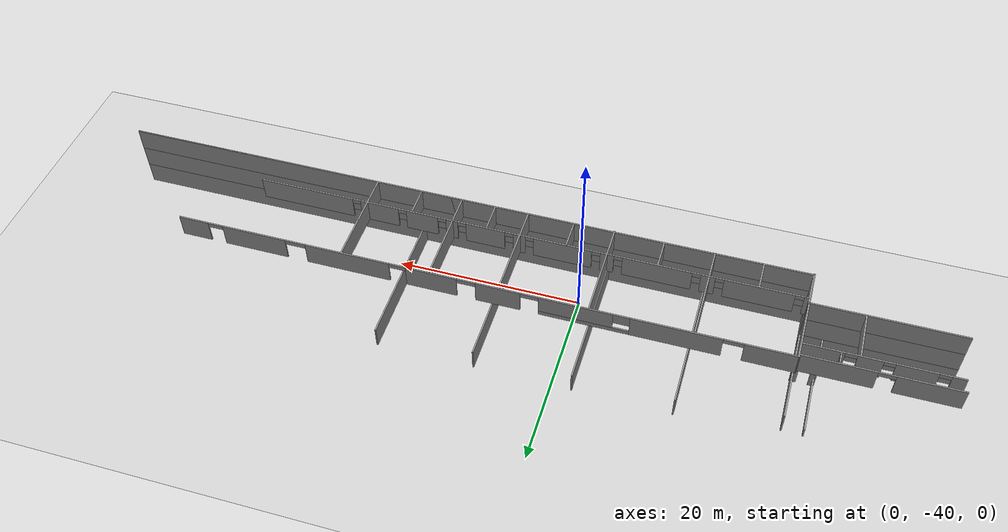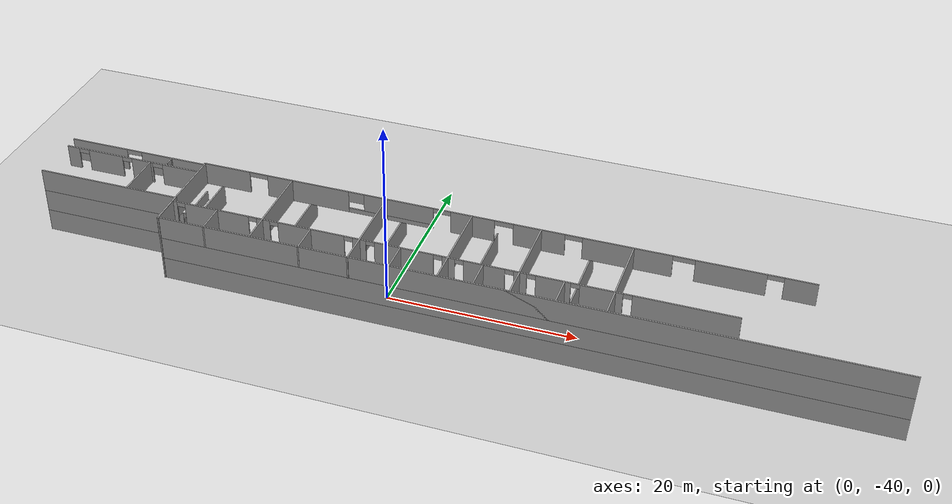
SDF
<sdf version="1.7">
 <world name="default">
  <model name="ground_plane">
   <static>1</static>
   <link name="link">
    <collision name="collision">
     <geometry><plane><normal>0 0 1</normal><size>100 100</size></plane></geometry>
     <surface><friction><ode><mu>100</mu><mu2>50</mu2></ode></friction></surface>
    </collision>
    <visual name="visual">
     <cast_shadows>0</cast_shadows>
     <geometry><plane><normal>0 0 1</normal><size>100 100</size></plane></geometry>
     <material>
      <script><uri>file://media/materials/scripts/gazebo.material</uri><name>Gazebo/Grey</name></script>
     </material>
    </visual>
   </link>
  </model>
  <model name="Anselm_Turmeda">
   <pose>-32.7988 -2.37459 0 0 -0 0</pose>
   <link name="Wall_1">
    <collision name="Wall_1_Collision">
     <geometry><box><size>75 0.15 2.5</size></box></geometry>
     <pose>0 0 1.25 0 -0 0</pose>
    </collision>
    <visual name="Wall_1_Visual">
     <pose>0 0 1.25 0 -0 0</pose>
     <geometry><box><size>75 0.15 2.5</size></box></geometry>
     <material>
      <script><uri>file://media/materials/scripts/gazebo.material</uri><name>Gazebo/Grey</name></script>
      <ambient>1 1 1 1</ambient>
     </material>
     <meta><layer>0</layer></meta>
    </visual>
    <pose>47.3769 -41.8543 0 0 -0 0</pose>
   </link>
   <link name="Wall_22">
    <collision name="Wall_22_Collision">
     <geometry><box><size>15.75 0.15 2.5</size></box></geometry>
     <pose>0 0 1.25 0 -0 0</pose>
    </collision>
    <visual name="Wall_22_Visual">
     <pose>0 0 1.25 0 -0 0</pose>
     <geometry><box><size>15.75 0.15 2.5</size></box></geometry>
     <material>
      <script><uri>file://media/materials/scripts/gazebo.material</uri><name>Gazebo/Grey</name></script>
      <ambient>1 1 1 1</ambient>
     </material>
     <meta><layer>0</layer></meta>
    </visual>
    <pose>2.02258 -38.0708 0 0 -0 0</pose>
   </link>
   <link name="Wall_226">
    <collision name="Wall_226_Collision">
     <geometry><box><size>75.2 0.15 2.5</size></box></geometry>
     <pose>0 0 1.25 0 -0 0</pose>
    </collision>
    <visual name="Wall_226_Visual">
     <pose>0 0 1.25 0 -0 0</pose>
     <geometry><box><size>75.2 0.15 2.5</size></box></geometry>
     <material>
      <script><uri>file://media/materials/scripts/gazebo.material</uri><name>Gazebo/Grey</name></script>
      <ambient>1 1 1 1</ambient>
     </material>
     <meta><layer>2</layer></meta>
    </visual>
    <pose>47.2769 -41.8543 5 0 -0 3.14159</pose>
   </link>
   <link name="Wall_228">
    <collision name="Wall_228_Collision">
     <geometry><box><size>10.7998 0.15 2.5</size></box></geometry>
     <pose>0 0 1.25 0 -0 0</pose>
    </collision>
    <visual name="Wall_228_Visual">
     <pose>0 0 1.25 0 -0 0</pose>
     <geometry><box><size>10.7998 0.15 2.5</size></box></geometry>
     <material>
      <script><uri>file://media/materials/scripts/gazebo.material</uri><name>Gazebo/Grey</name></script>
      <ambient>1 1 1 1</ambient>
     </material>
     <meta><layer>2</layer></meta>
    </visual>
    <pose>9.79231 -36.5296 5 0 -0 1.56321</pose>
   </link>
   <link name="Wall_229">
    <pose>42.0832 -31.2048 5 0 -0 0</pose>
    <visual name="Wall_229_Visual_0">
     <pose>-29.715 0 1.25 0 -0 0</pose>
     <geometry><box><size>5.31995 0.15 2.5</size></box></geometry>
     <material>
      <script><uri>file://media/materials/scripts/gazebo.material</uri><name>Gazebo/Grey</name></script>
      <ambient>1 1 1 1</ambient>
     </material>
     <meta><layer>2</layer></meta>
    </visual>
    <collision name="Wall_229_Collision_0">
     <geometry><box><size>5.31995 0.15 2.5</size></box></geometry>
     <pose>-29.715 0 1.25 0 -0 0</pose>
    </collision>
    <visual name="Wall_229_Visual_1">
     <pose>-20.441 0 1.25 0 -0 0</pose>
     <geometry><box><size>9.16156 0.15 2.5</size></box></geometry>
     <material>
      <script><uri>file://media/materials/scripts/gazebo.material</uri><name>Gazebo/Grey</name></script>
      <ambient>1 1 1 1</ambient>
     </material>
     <meta><layer>2</layer></meta>
    </visual>
    <collision name="Wall_229_Collision_1">
     <geometry><box><size>9.16156 0.15 2.5</size></box></geometry>
     <pose>-20.441 0 1.25 0 -0 0</pose>
    </collision>
    <visual name="Wall_229_Visual_2">
     <pose>-2.37066 0 1.25 0 -0 0</pose>
     <geometry><box><size>4.67221 0.15 2.5</size></box></geometry>
     <material>
      <script><uri>file://media/materials/scripts/gazebo.material</uri><name>Gazebo/Grey</name></script>
      <ambient>1 1 1 1</ambient>
     </material>
     <meta><layer>2</layer></meta>
    </visual>
    <collision name="Wall_229_Collision_2">
     <geometry><box><size>4.67221 0.15 2.5</size></box></geometry>
     <pose>-2.37066 0 1.25 0 -0 0</pose>
    </collision>
    <visual name="Wall_229_Visual_3">
     <pose>4.64135 0 1.25 0 -0 0</pose>
     <geometry><box><size>5.38276 0.15 2.5</size></box></geometry>
     <material>
      <script><uri>file://media/materials/scripts/gazebo.material</uri><name>Gazebo/Grey</name></script>
      <ambient>1 1 1 1</ambient>
     </material>
     <meta><layer>2</layer></meta>
    </visual>
    <collision name="Wall_229_Collision_3">
     <geometry><box><size>5.38276 0.15 2.5</size></box></geometry>
     <pose>4.64135 0 1.25 0 -0 0</pose>
    </collision>
    <visual name="Wall_229_Visual_4">
     <pose>13.6915 0 1.25 0 -0 0</pose>
     <geometry><box><size>9.1225 0.15 2.5</size></box></geometry>
     <material>
      <script><uri>file://media/materials/scripts/gazebo.material</uri><name>Gazebo/Grey</name></script>
      <ambient>1 1 1 1</ambient>
     </material>
     <meta><layer>2</layer></meta>
    </visual>
    <collision name="Wall_229_Collision_4">
     <geometry><box><size>9.1225 0.15 2.5</size></box></geometry>
     <pose>13.6915 0 1.25 0 -0 0</pose>
    </collision>
    <visual name="Wall_229_Visual_5">
     <pose>23.9664 0 1.25 0 -0 0</pose>
     <geometry><box><size>7.00954 0.15 2.5</size></box></geometry>
     <material>
      <script><uri>file://media/materials/scripts/gazebo.material</uri><name>Gazebo/Grey</name></script>
      <ambient>1 1 1 1</ambient>
     </material>
     <meta><layer>2</layer></meta>
    </visual>
    <collision name="Wall_229_Collision_5">
     <geometry><box><size>7.00954 0.15 2.5</size></box></geometry>
     <pose>23.9664 0 1.25 0 -0 0</pose>
    </collision>
    <visual name="Wall_229_Visual_6">
     <pose>30.7471 0 1.25 0 -0 0</pose>
     <geometry><box><size>3.25584 0.15 2.5</size></box></geometry>
     <material>
      <script><uri>file://media/materials/scripts/gazebo.material</uri><name>Gazebo/Grey</name></script>
      <ambient>1 1 1 1</ambient>
     </material>
     <meta><layer>2</layer></meta>
    </visual>
    <collision name="Wall_229_Collision_6">
     <geometry><box><size>3.25584 0.15 2.5</size></box></geometry>
     <pose>30.7471 0 1.25 0 -0 0</pose>
    </collision>
    <visual name="Wall_229_Visual_7">
     <pose>-11.2197 0 0.25 0 -0 0</pose>
     <geometry><box><size>9.28115 0.15 0.5</size></box></geometry>
     <material>
      <script><uri>file://media/materials/scripts/gazebo.material</uri><name>Gazebo/Grey</name></script>
      <ambient>1 1 1 1</ambient>
     </material>
     <meta><layer>2</layer></meta>
    </visual>
    <collision name="Wall_229_Collision_7">
     <geometry><box><size>9.28115 0.15 0.5</size></box></geometry>
     <pose>-11.2197 0 0.25 0 -0 0</pose>
    </collision>
    <visual name="Wall_229_Visual_8">
     <pose>-10.3706 0 1.5 0 -0 0</pose>
     <geometry><box><size>7.58311 0.15 2</size></box></geometry>
     <material>
      <script><uri>file://media/materials/scripts/gazebo.material</uri><name>Gazebo/Grey</name></script>
      <ambient>1 1 1 1</ambient>
     </material>
     <meta><layer>2</layer></meta>
    </visual>
    <collision name="Wall_229_Collision_8">
     <geometry><box><size>7.58311 0.15 2</size></box></geometry>
     <pose>-10.3706 0 1.5 0 -0 0</pose>
    </collision>
    <visual name="Wall_229_Visual_9">
     <pose>-15.0112 0 1.9 0 -0 0</pose>
     <geometry><box><size>1.69805 0.15 1.2</size></box></geometry>
     <material>
      <script><uri>file://media/materials/scripts/gazebo.material</uri><name>Gazebo/Grey</name></script>
      <ambient>1 1 1 1</ambient>
     </material>
     <meta><layer>2</layer></meta>
    </visual>
    <collision name="Wall_229_Collision_9">
     <geometry><box><size>1.69805 0.15 1.2</size></box></geometry>
     <pose>-15.0112 0 1.9 0 -0 0</pose>
    </collision>
    <visual name="Wall_229_Visual_10">
     <pose>-26.0384 0 2.25 0 -0 0</pose>
     <geometry><box><size>2.03325 0.15 0.5</size></box></geometry>
     <material>
      <script><uri>file://media/materials/scripts/gazebo.material</uri><name>Gazebo/Grey</name></script>
      <ambient>1 1 1 1</ambient>
     </material>
     <meta><layer>2</layer></meta>
    </visual>
    <collision name="Wall_229_Collision_10">
     <geometry><box><size>2.03325 0.15 0.5</size></box></geometry>
     <pose>-26.0384 0 2.25 0 -0 0</pose>
    </collision>
    <visual name="Wall_229_Visual_11">
     <pose>0.957709 0 2.25 0 -0 0</pose>
     <geometry><box><size>1.98452 0.15 0.5</size></box></geometry>
     <material>
      <script><uri>file://media/materials/scripts/gazebo.material</uri><name>Gazebo/Grey</name></script>
      <ambient>1 1 1 1</ambient>
     </material>
     <meta><layer>2</layer></meta>
    </visual>
    <collision name="Wall_229_Collision_11">
     <geometry><box><size>1.98452 0.15 0.5</size></box></geometry>
     <pose>0.957709 0 2.25 0 -0 0</pose>
    </collision>
    <visual name="Wall_229_Visual_12">
     <pose>8.2315 0 2.25 0 -0 0</pose>
     <geometry><box><size>1.79754 0.15 0.5</size></box></geometry>
     <material>
      <script><uri>file://media/materials/scripts/gazebo.material</uri><name>Gazebo/Grey</name></script>
      <ambient>1 1 1 1</ambient>
     </material>
     <meta><layer>2</layer></meta>
    </visual>
    <collision name="Wall_229_Collision_12">
     <geometry><box><size>1.79754 0.15 0.5</size></box></geometry>
     <pose>8.2315 0 2.25 0 -0 0</pose>
    </collision>
    <visual name="Wall_229_Visual_13">
     <pose>19.3572 0 2.25 0 -0 0</pose>
     <geometry><box><size>2.20891 0.15 0.5</size></box></geometry>
     <material>
      <script><uri>file://media/materials/scripts/gazebo.material</uri><name>Gazebo/Grey</name></script>
      <ambient>1 1 1 1</ambient>
     </material>
     <meta><layer>2</layer></meta>
    </visual>
    <collision name="Wall_229_Collision_13">
     <geometry><box><size>2.20891 0.15 0.5</size></box></geometry>
     <pose>19.3572 0 2.25 0 -0 0</pose>
    </collision>
    <visual name="Wall_229_Visual_14">
     <pose>28.2952 0 2.25 0 -0 0</pose>
     <geometry><box><size>1.64795 0.15 0.5</size></box></geometry>
     <material>
      <script><uri>file://media/materials/scripts/gazebo.material</uri><name>Gazebo/Grey</name></script>
      <ambient>1 1 1 1</ambient>
     </material>
     <meta><layer>2</layer></meta>
    </visual>
    <collision name="Wall_229_Collision_14">
     <geometry><box><size>1.64795 0.15 0.5</size></box></geometry>
     <pose>28.2952 0 2.25 0 -0 0</pose>
    </collision>
    <visual name="Wall_229_Visual_15">
     <pose>-5.64293 0 2.25 0 -0 0</pose>
     <geometry><box><size>1.87233 0.15 0.5</size></box></geometry>
     <material>
      <script><uri>file://media/materials/scripts/gazebo.material</uri><name>Gazebo/Grey</name></script>
      <ambient>1 1 1 1</ambient>
     </material>
     <meta><layer>2</layer></meta>
    </visual>
    <collision name="Wall_229_Collision_15">
     <geometry><box><size>1.87233 0.15 0.5</size></box></geometry>
     <pose>-5.64293 0 2.25 0 -0 0</pose>
    </collision>
   </link>
   <link name="Wall_24">
    <collision name="Wall_24_Collision">
     <geometry><box><size>4 0.15 2.5</size></box></geometry>
     <pose>0 0 1.25 0 -0 0</pose>
    </collision>
    <visual name="Wall_24_Visual">
     <pose>0 0 1.25 0 -0 0</pose>
     <geometry><box><size>4 0.15 2.5</size></box></geometry>
     <material>
      <script><uri>file://media/materials/scripts/gazebo.material</uri><name>Gazebo/Grey</name></script>
      <ambient>1 1 1 1</ambient>
     </material>
     <meta><layer>0</layer></meta>
    </visual>
    <pose>9.82258 -39.9958 0 0 -0 -1.5708</pose>
   </link>
   <link name="Wall_242">
    <collision name="Wall_242_Collision">
     <geometry><box><size>10.75 0.15 2.5</size></box></geometry>
     <pose>0 0 1.25 0 -0 0</pose>
    </collision>
    <visual name="Wall_242_Visual">
     <pose>0 0 1.25 0 -0 0</pose>
     <geometry><box><size>10.75 0.15 2.5</size></box></geometry>
     <material>
      <script><uri>file://media/materials/scripts/gazebo.material</uri><name>Gazebo/Grey</name></script>
      <ambient>1 1 1 1</ambient>
     </material>
     <meta><layer>2</layer></meta>
    </visual>
    <pose>56.4073 -36.5475 5 0 -0 1.5708</pose>
   </link>
   <link name="Wall_244">
    <collision name="Wall_244_Collision">
     <geometry><box><size>10.75 0.15 2.5</size></box></geometry>
     <pose>0 0 1.25 0 -0 0</pose>
    </collision>
    <visual name="Wall_244_Visual">
     <pose>0 0 1.25 0 -0 0</pose>
     <geometry><box><size>10.75 0.15 2.5</size></box></geometry>
     <material>
      <script><uri>file://media/materials/scripts/gazebo.material</uri><name>Gazebo/Grey</name></script>
      <ambient>1 1 1 1</ambient>
     </material>
     <meta><layer>2</layer></meta>
    </visual>
    <pose>46.9387 -36.5284 5 0 -0 1.5708</pose>
   </link>
   <link name="Wall_247">
    <collision name="Wall_247_Collision">
     <geometry><box><size>10.7 0.15 2.5</size></box></geometry>
     <pose>0 0 1.25 0 -0 0</pose>
    </collision>
    <visual name="Wall_247_Visual">
     <pose>0 0 1.25 0 -0 0</pose>
     <geometry><box><size>10.7 0.15 2.5</size></box></geometry>
     <material>
      <script><uri>file://media/materials/scripts/gazebo.material</uri><name>Gazebo/Grey</name></script>
      <ambient>1 1 1 1</ambient>
     </material>
     <meta><layer>2</layer></meta>
    </visual>
    <pose>19.8568 -36.5547 5 0 -0 1.5708</pose>
   </link>
   <link name="Wall_249">
    <collision name="Wall_249_Collision">
     <geometry><box><size>10.75 0.15 2.5</size></box></geometry>
     <pose>0 0 1.25 0 -0 0</pose>
    </collision>
    <visual name="Wall_249_Visual">
     <pose>0 0 1.25 0 -0 0</pose>
     <geometry><box><size>10.75 0.15 2.5</size></box></geometry>
     <material>
      <script><uri>file://media/materials/scripts/gazebo.material</uri><name>Gazebo/Grey</name></script>
      <ambient>1 1 1 1</ambient>
     </material>
     <meta><layer>2</layer></meta>
    </visual>
    <pose>30.3923 -36.6359 5 0 -0 1.5708</pose>
   </link>
   <link name="Wall_251">
    <collision name="Wall_251_Collision">
     <geometry><box><size>10.7 0.15 2.5</size></box></geometry>
     <pose>0 0 1.25 0 -0 0</pose>
    </collision>
    <visual name="Wall_251_Visual">
     <pose>0 0 1.25 0 -0 0</pose>
     <geometry><box><size>10.7 0.15 2.5</size></box></geometry>
     <material>
      <script><uri>file://media/materials/scripts/gazebo.material</uri><name>Gazebo/Grey</name></script>
      <ambient>1 1 1 1</ambient>
     </material>
     <meta><layer>2</layer></meta>
    </visual>
    <pose>39.6437 -36.5614 5 0 -0 1.5708</pose>
   </link>
   <link name="Wall_253">
    <pose>39.0687 -38.6976 5 0 -0 0</pose>
    <visual name="Wall_253_Visual_0">
     <pose>-29.0603 0 1.25 0 -0 0</pose>
     <geometry><box><size>0.62942 0.15 2.5</size></box></geometry>
     <material>
      <script><uri>file://media/materials/scripts/gazebo.material</uri><name>Gazebo/Grey</name></script>
      <ambient>1 1 1 1</ambient>
     </material>
     <meta><layer>2</layer></meta>
    </visual>
    <collision name="Wall_253_Collision_0">
     <geometry><box><size>0.62942 0.15 2.5</size></box></geometry>
     <pose>-29.0603 0 1.25 0 -0 0</pose>
    </collision>
    <visual name="Wall_253_Visual_1">
     <pose>-24.2941 0 1.25 0 -0 0</pose>
     <geometry><box><size>7.10304 0.15 2.5</size></box></geometry>
     <material>
      <script><uri>file://media/materials/scripts/gazebo.material</uri><name>Gazebo/Grey</name></script>
      <ambient>1 1 1 1</ambient>
     </material>
     <meta><layer>2</layer></meta>
    </visual>
    <collision name="Wall_253_Collision_1">
     <geometry><box><size>7.10304 0.15 2.5</size></box></geometry>
     <pose>-24.2941 0 1.25 0 -0 0</pose>
    </collision>
    <visual name="Wall_253_Visual_2">
     <pose>-19.1145 0 1.25 0 -0 0</pose>
     <geometry><box><size>1.45603 0.15 2.5</size></box></geometry>
     <material>
      <script><uri>file://media/materials/scripts/gazebo.material</uri><name>Gazebo/Grey</name></script>
      <ambient>1 1 1 1</ambient>
     </material>
     <meta><layer>2</layer></meta>
    </visual>
    <collision name="Wall_253_Collision_2">
     <geometry><box><size>1.45603 0.15 2.5</size></box></geometry>
     <pose>-19.1145 0 1.25 0 -0 0</pose>
    </collision>
    <visual name="Wall_253_Visual_3">
     <pose>-13.8976 0 1.25 0 -0 0</pose>
     <geometry><box><size>7.17783 0.15 2.5</size></box></geometry>
     <material>
      <script><uri>file://media/materials/scripts/gazebo.material</uri><name>Gazebo/Grey</name></script>
      <ambient>1 1 1 1</ambient>
     </material>
     <meta><layer>2</layer></meta>
    </visual>
    <collision name="Wall_253_Collision_3">
     <geometry><box><size>7.17783 0.15 2.5</size></box></geometry>
     <pose>-13.8976 0 1.25 0 -0 0</pose>
    </collision>
    <visual name="Wall_253_Visual_4">
     <pose>-8.69936 0 1.25 0 -0 0</pose>
     <geometry><box><size>1.41864 0.15 2.5</size></box></geometry>
     <material>
      <script><uri>file://media/materials/scripts/gazebo.material</uri><name>Gazebo/Grey</name></script>
      <ambient>1 1 1 1</ambient>
     </material>
     <meta><layer>2</layer></meta>
    </visual>
    <collision name="Wall_253_Collision_4">
     <geometry><box><size>1.41864 0.15 2.5</size></box></geometry>
     <pose>-8.69936 0 1.25 0 -0 0</pose>
    </collision>
    <visual name="Wall_253_Visual_5">
     <pose>-4.00599 0 1.25 0 -0 0</pose>
     <geometry><box><size>6.1681 0.15 2.5</size></box></geometry>
     <material>
      <script><uri>file://media/materials/scripts/gazebo.material</uri><name>Gazebo/Grey</name></script>
      <ambient>1 1 1 1</ambient>
     </material>
     <meta><layer>2</layer></meta>
    </visual>
    <collision name="Wall_253_Collision_5">
     <geometry><box><size>6.1681 0.15 2.5</size></box></geometry>
     <pose>-4.00599 0 1.25 0 -0 0</pose>
    </collision>
    <visual name="Wall_253_Visual_6">
     <pose>0.631282 0 1.25 0 -0 0</pose>
     <geometry><box><size>1.30645 0.15 2.5</size></box></geometry>
     <material>
      <script><uri>file://media/materials/scripts/gazebo.material</uri><name>Gazebo/Grey</name></script>
      <ambient>1 1 1 1</ambient>
     </material>
     <meta><layer>2</layer></meta>
    </visual>
    <collision name="Wall_253_Collision_6">
     <geometry><box><size>1.30645 0.15 2.5</size></box></geometry>
     <pose>0.631282 0 1.25 0 -0 0</pose>
    </collision>
    <visual name="Wall_253_Visual_7">
     <pose>4.29622 0 1.25 0 -0 0</pose>
     <geometry><box><size>4.22344 0.15 2.5</size></box></geometry>
     <material>
      <script><uri>file://media/materials/scripts/gazebo.material</uri><name>Gazebo/Grey</name></script>
      <ambient>1 1 1 1</ambient>
     </material>
     <meta><layer>2</layer></meta>
    </visual>
    <collision name="Wall_253_Collision_7">
     <geometry><box><size>4.22344 0.15 2.5</size></box></geometry>
     <pose>4.29622 0 1.25 0 -0 0</pose>
    </collision>
    <visual name="Wall_253_Visual_8">
     <pose>7.96117 0 1.25 0 -0 0</pose>
     <geometry><box><size>1.30645 0.15 2.5</size></box></geometry>
     <material>
      <script><uri>file://media/materials/scripts/gazebo.material</uri><name>Gazebo/Grey</name></script>
      <ambient>1 1 1 1</ambient>
     </material>
     <meta><layer>2</layer></meta>
    </visual>
    <collision name="Wall_253_Collision_8">
     <geometry><box><size>1.30645 0.15 2.5</size></box></geometry>
     <pose>7.96117 0 1.25 0 -0 0</pose>
    </collision>
    <visual name="Wall_253_Visual_9">
     <pose>11.2521 0 1.25 0 -0 0</pose>
     <geometry><box><size>3.47549 0.15 2.5</size></box></geometry>
     <material>
      <script><uri>file://media/materials/scripts/gazebo.material</uri><name>Gazebo/Grey</name></script>
      <ambient>1 1 1 1</ambient>
     </material>
     <meta><layer>2</layer></meta>
    </visual>
    <collision name="Wall_253_Collision_9">
     <geometry><box><size>3.47549 0.15 2.5</size></box></geometry>
     <pose>11.2521 0 1.25 0 -0 0</pose>
    </collision>
    <visual name="Wall_253_Visual_10">
     <pose>16.0016 0 1.25 0 -0 0</pose>
     <geometry><box><size>4.22344 0.15 2.5</size></box></geometry>
     <material>
      <script><uri>file://media/materials/scripts/gazebo.material</uri><name>Gazebo/Grey</name></script>
      <ambient>1 1 1 1</ambient>
     </material>
     <meta><layer>2</layer></meta>
    </visual>
    <collision name="Wall_253_Collision_10">
     <geometry><box><size>4.22344 0.15 2.5</size></box></geometry>
     <pose>16.0016 0 1.25 0 -0 0</pose>
    </collision>
    <visual name="Wall_253_Visual_11">
     <pose>24.1942 0 1.25 0 -0 0</pose>
     <geometry><box><size>10.3617 0.15 2.5</size></box></geometry>
     <material>
      <script><uri>file://media/materials/scripts/gazebo.material</uri><name>Gazebo/Grey</name></script>
      <ambient>1 1 1 1</ambient>
     </material>
     <meta><layer>2</layer></meta>
    </visual>
    <collision name="Wall_253_Collision_11">
     <geometry><box><size>10.3617 0.15 2.5</size></box></geometry>
     <pose>24.1942 0 1.25 0 -0 0</pose>
    </collision>
    <visual name="Wall_253_Visual_12">
     <pose>-28.2956 0 2.25 0 -0 0</pose>
     <geometry><box><size>0.9 0.15 0.5</size></box></geometry>
     <material>
      <script><uri>file://media/materials/scripts/gazebo.material</uri><name>Gazebo/Grey</name></script>
      <ambient>1 1 1 1</ambient>
     </material>
     <meta><layer>2</layer></meta>
    </visual>
    <collision name="Wall_253_Collision_12">
     <geometry><box><size>0.9 0.15 0.5</size></box></geometry>
     <pose>-28.2956 0 2.25 0 -0 0</pose>
    </collision>
    <visual name="Wall_253_Visual_13">
     <pose>-20.2925 0 2.25 0 -0 0</pose>
     <geometry><box><size>0.9 0.15 0.5</size></box></geometry>
     <material>
      <script><uri>file://media/materials/scripts/gazebo.material</uri><name>Gazebo/Grey</name></script>
      <ambient>1 1 1 1</ambient>
     </material>
     <meta><layer>2</layer></meta>
    </visual>
    <collision name="Wall_253_Collision_13">
     <geometry><box><size>0.9 0.15 0.5</size></box></geometry>
     <pose>-20.2925 0 2.25 0 -0 0</pose>
    </collision>
    <visual name="Wall_253_Visual_14">
     <pose>-17.9365 0 2.25 0 -0 0</pose>
     <geometry><box><size>0.9 0.15 0.5</size></box></geometry>
     <material>
      <script><uri>file://media/materials/scripts/gazebo.material</uri><name>Gazebo/Grey</name></script>
      <ambient>1 1 1 1</ambient>
     </material>
     <meta><layer>2</layer></meta>
    </visual>
    <collision name="Wall_253_Collision_14">
     <geometry><box><size>0.9 0.15 0.5</size></box></geometry>
     <pose>-17.9365 0 2.25 0 -0 0</pose>
    </collision>
    <visual name="Wall_253_Visual_15">
     <pose>-9.85868 0 2.25 0 -0 0</pose>
     <geometry><box><size>0.9 0.15 0.5</size></box></geometry>
     <material>
      <script><uri>file://media/materials/scripts/gazebo.material</uri><name>Gazebo/Grey</name></script>
      <ambient>1 1 1 1</ambient>
     </material>
     <meta><layer>2</layer></meta>
    </visual>
    <collision name="Wall_253_Collision_15">
     <geometry><box><size>0.9 0.15 0.5</size></box></geometry>
     <pose>-9.85868 0 2.25 0 -0 0</pose>
    </collision>
    <visual name="Wall_253_Visual_16">
     <pose>-7.54004 0 2.25 0 -0 0</pose>
     <geometry><box><size>0.9 0.15 0.5</size></box></geometry>
     <material>
      <script><uri>file://media/materials/scripts/gazebo.material</uri><name>Gazebo/Grey</name></script>
      <ambient>1 1 1 1</ambient>
     </material>
     <meta><layer>2</layer></meta>
    </visual>
    <collision name="Wall_253_Collision_16">
     <geometry><box><size>0.9 0.15 0.5</size></box></geometry>
     <pose>-7.54004 0 2.25 0 -0 0</pose>
    </collision>
    <visual name="Wall_253_Visual_17">
     <pose>-0.47194 0 2.25 0 -0 0</pose>
     <geometry><box><size>0.9 0.15 0.5</size></box></geometry>
     <material>
      <script><uri>file://media/materials/scripts/gazebo.material</uri><name>Gazebo/Grey</name></script>
      <ambient>1 1 1 1</ambient>
     </material>
     <meta><layer>2</layer></meta>
    </visual>
    <collision name="Wall_253_Collision_17">
     <geometry><box><size>0.9 0.15 0.5</size></box></geometry>
     <pose>-0.47194 0 2.25 0 -0 0</pose>
    </collision>
    <visual name="Wall_253_Visual_18">
     <pose>1.7345 0 2.25 0 -0 0</pose>
     <geometry><box><size>0.9 0.15 0.5</size></box></geometry>
     <material>
      <script><uri>file://media/materials/scripts/gazebo.material</uri><name>Gazebo/Grey</name></script>
      <ambient>1 1 1 1</ambient>
     </material>
     <meta><layer>2</layer></meta>
    </visual>
    <collision name="Wall_253_Collision_18">
     <geometry><box><size>0.9 0.15 0.5</size></box></geometry>
     <pose>1.7345 0 2.25 0 -0 0</pose>
    </collision>
    <visual name="Wall_253_Visual_19">
     <pose>6.85794 0 2.25 0 -0 0</pose>
     <geometry><box><size>0.9 0.15 0.5</size></box></geometry>
     <material>
      <script><uri>file://media/materials/scripts/gazebo.material</uri><name>Gazebo/Grey</name></script>
      <ambient>1 1 1 1</ambient>
     </material>
     <meta><layer>2</layer></meta>
    </visual>
    <collision name="Wall_253_Collision_19">
     <geometry><box><size>0.9 0.15 0.5</size></box></geometry>
     <pose>6.85794 0 2.25 0 -0 0</pose>
    </collision>
    <visual name="Wall_253_Visual_20">
     <pose>9.06439 0 2.25 0 -0 0</pose>
     <geometry><box><size>0.9 0.15 0.5</size></box></geometry>
     <material>
      <script><uri>file://media/materials/scripts/gazebo.material</uri><name>Gazebo/Grey</name></script>
      <ambient>1 1 1 1</ambient>
     </material>
     <meta><layer>2</layer></meta>
    </visual>
    <collision name="Wall_253_Collision_20">
     <geometry><box><size>0.9 0.15 0.5</size></box></geometry>
     <pose>9.06439 0 2.25 0 -0 0</pose>
    </collision>
    <visual name="Wall_253_Visual_21">
     <pose>13.4399 0 2.25 0 -0 0</pose>
     <geometry><box><size>0.9 0.15 0.5</size></box></geometry>
     <material>
      <script><uri>file://media/materials/scripts/gazebo.material</uri><name>Gazebo/Grey</name></script>
      <ambient>1 1 1 1</ambient>
     </material>
     <meta><layer>2</layer></meta>
    </visual>
    <collision name="Wall_253_Collision_21">
     <geometry><box><size>0.9 0.15 0.5</size></box></geometry>
     <pose>13.4399 0 2.25 0 -0 0</pose>
    </collision>
    <visual name="Wall_253_Visual_22">
     <pose>18.5633 0 2.25 0 -0 0</pose>
     <geometry><box><size>0.9 0.15 0.5</size></box></geometry>
     <material>
      <script><uri>file://media/materials/scripts/gazebo.material</uri><name>Gazebo/Grey</name></script>
      <ambient>1 1 1 1</ambient>
     </material>
     <meta><layer>2</layer></meta>
    </visual>
    <collision name="Wall_253_Collision_22">
     <geometry><box><size>0.9 0.15 0.5</size></box></geometry>
     <pose>18.5633 0 2.25 0 -0 0</pose>
    </collision>
   </link>
   <link name="Wall_255">
    <collision name="Wall_255_Collision">
     <geometry><box><size>3.25 0.15 2.5</size></box></geometry>
     <pose>0 0 1.25 0 -0 0</pose>
    </collision>
    <visual name="Wall_255_Visual">
     <pose>0 0 1.25 0 -0 0</pose>
     <geometry><box><size>3.25 0.15 2.5</size></box></geometry>
     <material>
      <script><uri>file://media/materials/scripts/gazebo.material</uri><name>Gazebo/Grey</name></script>
      <ambient>1 1 1 1</ambient>
     </material>
     <meta><layer>2</layer></meta>
    </visual>
    <pose>14.8337 -40.305 5 0 -0 1.5708</pose>
   </link>
   <link name="Wall_257">
    <collision name="Wall_257_Collision">
     <geometry><box><size>3.25 0.15 2.5</size></box></geometry>
     <pose>0 0 1.25 0 -0 0</pose>
    </collision>
    <visual name="Wall_257_Visual">
     <pose>0 0 1.25 0 -0 0</pose>
     <geometry><box><size>3.25 0.15 2.5</size></box></geometry>
     <material>
      <script><uri>file://media/materials/scripts/gazebo.material</uri><name>Gazebo/Grey</name></script>
      <ambient>1 1 1 1</ambient>
     </material>
     <meta><layer>2</layer></meta>
    </visual>
    <pose>25.1205 -40.3139 5 0 -0 1.5708</pose>
   </link>
   <link name="Wall_259">
    <collision name="Wall_259_Collision">
     <geometry><box><size>3.25 0.15 2.5</size></box></geometry>
     <pose>0 0 1.25 0 -0 0</pose>
    </collision>
    <visual name="Wall_259_Visual">
     <pose>0 0 1.25 0 -0 0</pose>
     <geometry><box><size>3.25 0.15 2.5</size></box></geometry>
     <material>
      <script><uri>file://media/materials/scripts/gazebo.material</uri><name>Gazebo/Grey</name></script>
      <ambient>1 1 1 1</ambient>
     </material>
     <meta><layer>2</layer></meta>
    </visual>
    <pose>34.6975 -40.2814 5 0 -0 1.5708</pose>
   </link>
   <link name="Wall_26">
    <collision name="Wall_26_Collision">
     <geometry><box><size>75 0.15 2.5</size></box></geometry>
     <pose>0 0 1.25 0 -0 0</pose>
    </collision>
    <visual name="Wall_26_Visual">
     <pose>0 0 1.25 0 -0 0</pose>
     <geometry><box><size>75 0.15 2.5</size></box></geometry>
     <material>
      <script><uri>file://media/materials/scripts/gazebo.material</uri><name>Gazebo/Grey</name></script>
      <ambient>1 1 1 1</ambient>
     </material>
     <meta><layer>1</layer></meta>
    </visual>
    <pose>47.3769 -41.8543 2.5 0 -0 0</pose>
   </link>
   <link name="Wall_261">
    <collision name="Wall_261_Collision">
     <geometry><box><size>3.25 0.15 2.5</size></box></geometry>
     <pose>0 0 1.25 0 -0 0</pose>
    </collision>
    <visual name="Wall_261_Visual">
     <pose>0 0 1.25 0 -0 0</pose>
     <geometry><box><size>3.25 0.15 2.5</size></box></geometry>
     <material>
      <script><uri>file://media/materials/scripts/gazebo.material</uri><name>Gazebo/Grey</name></script>
      <ambient>1 1 1 1</ambient>
     </material>
     <meta><layer>2</layer></meta>
    </visual>
    <pose>43.2501 -40.2651 5 0 -0 1.5708</pose>
   </link>
   <link name="Wall_263">
    <collision name="Wall_263_Collision">
     <geometry><box><size>3.25 0.15 2.5</size></box></geometry>
     <pose>0 0 1.25 0 -0 0</pose>
    </collision>
    <visual name="Wall_263_Visual">
     <pose>0 0 1.25 0 -0 0</pose>
     <geometry><box><size>3.25 0.15 2.5</size></box></geometry>
     <material>
      <script><uri>file://media/materials/scripts/gazebo.material</uri><name>Gazebo/Grey</name></script>
      <ambient>1 1 1 1</ambient>
     </material>
     <meta><layer>2</layer></meta>
    </visual>
    <pose>51.445 -40.2977 5 0 -0 1.5708</pose>
   </link>
   <link name="Wall_270">
    <pose>1.98758 -31.4708 5 0 -0 0</pose>
    <visual name="Wall_270_Visual_0">
     <pose>-4.56757 0 1.25 0 -0 0</pose>
     <geometry><box><size>6.54485 0.15 2.5</size></box></geometry>
     <material>
      <script><uri>file://media/materials/scripts/gazebo.material</uri><name>Gazebo/Grey</name></script>
      <ambient>1 1 1 1</ambient>
     </material>
     <meta><layer>2</layer></meta>
    </visual>
    <collision name="Wall_270_Collision_0">
     <geometry><box><size>6.54485 0.15 2.5</size></box></geometry>
     <pose>-4.56757 0 1.25 0 -0 0</pose>
    </collision>
    <visual name="Wall_270_Visual_1">
     <pose>4.1338 0 1.25 0 -0 0</pose>
     <geometry><box><size>7.41241 0.15 2.5</size></box></geometry>
     <material>
      <script><uri>file://media/materials/scripts/gazebo.material</uri><name>Gazebo/Grey</name></script>
      <ambient>1 1 1 1</ambient>
     </material>
     <meta><layer>2</layer></meta>
    </visual>
    <collision name="Wall_270_Collision_1">
     <geometry><box><size>7.41241 0.15 2.5</size></box></geometry>
     <pose>4.1338 0 1.25 0 -0 0</pose>
    </collision>
    <visual name="Wall_270_Visual_2">
     <pose>-0.433777 0 2.25 0 -0 0</pose>
     <geometry><box><size>1.72274 0.15 0.5</size></box></geometry>
     <material>
      <script><uri>file://media/materials/scripts/gazebo.material</uri><name>Gazebo/Grey</name></script>
      <ambient>1 1 1 1</ambient>
     </material>
     <meta><layer>2</layer></meta>
    </visual>
    <collision name="Wall_270_Collision_2">
     <geometry><box><size>1.72274 0.15 0.5</size></box></geometry>
     <pose>-0.433777 0 2.25 0 -0 0</pose>
    </collision>
   </link>
   <link name="Wall_272">
    <pose>2.05138 -32.9076 5 0 -0 3.14159</pose>
    <visual name="Wall_272_Visual_0">
     <pose>-5.67499 0 1.25 0 -0 0</pose>
     <geometry><box><size>4.19003 0.15 2.5</size></box></geometry>
     <material>
      <script><uri>file://media/materials/scripts/gazebo.material</uri><name>Gazebo/Grey</name></script>
      <ambient>1 1 1 1</ambient>
     </material>
     <meta><layer>2</layer></meta>
    </visual>
    <collision name="Wall_272_Collision_0">
     <geometry><box><size>4.19003 0.15 2.5</size></box></geometry>
     <pose>-5.67499 0 1.25 0 -0 0</pose>
    </collision>
    <visual name="Wall_272_Visual_1">
     <pose>-1.18531 0 1.25 0 -0 0</pose>
     <geometry><box><size>2.46576 0.15 2.5</size></box></geometry>
     <material>
      <script><uri>file://media/materials/scripts/gazebo.material</uri><name>Gazebo/Grey</name></script>
      <ambient>1 1 1 1</ambient>
     </material>
     <meta><layer>2</layer></meta>
    </visual>
    <collision name="Wall_272_Collision_1">
     <geometry><box><size>2.46576 0.15 2.5</size></box></geometry>
     <pose>-1.18531 0 1.25 0 -0 0</pose>
    </collision>
    <visual name="Wall_272_Visual_2">
     <pose>3.17834 0 1.25 0 -0 0</pose>
     <geometry><box><size>4.01276 0.15 2.5</size></box></geometry>
     <material>
      <script><uri>file://media/materials/scripts/gazebo.material</uri><name>Gazebo/Grey</name></script>
      <ambient>1 1 1 1</ambient>
     </material>
     <meta><layer>2</layer></meta>
    </visual>
    <collision name="Wall_272_Collision_2">
     <geometry><box><size>4.01276 0.15 2.5</size></box></geometry>
     <pose>3.17834 0 1.25 0 -0 0</pose>
    </collision>
    <visual name="Wall_272_Visual_3">
     <pose>7.06681 0 1.25 0 -0 0</pose>
     <geometry><box><size>1.40638 0.15 2.5</size></box></geometry>
     <material>
      <script><uri>file://media/materials/scripts/gazebo.material</uri><name>Gazebo/Grey</name></script>
      <ambient>1 1 1 1</ambient>
     </material>
     <meta><layer>2</layer></meta>
    </visual>
    <collision name="Wall_272_Collision_3">
     <geometry><box><size>1.40638 0.15 2.5</size></box></geometry>
     <pose>7.06681 0 1.25 0 -0 0</pose>
    </collision>
    <visual name="Wall_272_Visual_4">
     <pose>-2.99908 0 2.25 0 -0 0</pose>
     <geometry><box><size>1.16178 0.15 0.5</size></box></geometry>
     <material>
      <script><uri>file://media/materials/scripts/gazebo.material</uri><name>Gazebo/Grey</name></script>
      <ambient>1 1 1 1</ambient>
     </material>
     <meta><layer>2</layer></meta>
    </visual>
    <collision name="Wall_272_Collision_4">
     <geometry><box><size>1.16178 0.15 0.5</size></box></geometry>
     <pose>-2.99908 0 2.25 0 -0 0</pose>
    </collision>
    <visual name="Wall_272_Visual_5">
     <pose>0.609768 0 2.25 0 -0 0</pose>
     <geometry><box><size>1.12438 0.15 0.5</size></box></geometry>
     <material>
      <script><uri>file://media/materials/scripts/gazebo.material</uri><name>Gazebo/Grey</name></script>
      <ambient>1 1 1 1</ambient>
     </material>
     <meta><layer>2</layer></meta>
    </visual>
    <collision name="Wall_272_Collision_5">
     <geometry><box><size>1.12438 0.15 0.5</size></box></geometry>
     <pose>0.609768 0 2.25 0 -0 0</pose>
    </collision>
    <visual name="Wall_272_Visual_6">
     <pose>5.77417 0 2.25 0 -0 0</pose>
     <geometry><box><size>1.1789 0.15 0.5</size></box></geometry>
     <material>
      <script><uri>file://media/materials/scripts/gazebo.material</uri><name>Gazebo/Grey</name></script>
      <ambient>1 1 1 1</ambient>
     </material>
     <meta><layer>2</layer></meta>
    </visual>
    <collision name="Wall_272_Collision_6">
     <geometry><box><size>1.1789 0.15 0.5</size></box></geometry>
     <pose>5.77417 0 2.25 0 -0 0</pose>
    </collision>
   </link>
   <link name="Wall_276">
    <collision name="Wall_276_Collision">
     <geometry><box><size>5.25 0.15 2.5</size></box></geometry>
     <pose>0 0 1.25 0 -0 0</pose>
    </collision>
    <visual name="Wall_276_Visual">
     <pose>0 0 1.25 0 -0 0</pose>
     <geometry><box><size>5.25 0.15 2.5</size></box></geometry>
     <material>
      <script><uri>file://media/materials/scripts/gazebo.material</uri><name>Gazebo/Grey</name></script>
      <ambient>1 1 1 1</ambient>
     </material>
     <meta><layer>2</layer></meta>
    </visual>
    <pose>4.17809 -35.4843 5 0 -0 -1.5708</pose>
   </link>
   <link name="Wall_390">
    <pose>5.9921 -32.2306 5 0 -0 1.5708</pose>
    <visual name="Wall_390_Visual_0">
     <pose>-0.574934 0 1.25 0 -0 0</pose>
     <geometry><box><size>0.350133 0.15 2.5</size></box></geometry>
     <material>
      <script><uri>file://media/materials/scripts/gazebo.material</uri><name>Gazebo/Grey</name></script>
      <ambient>1 1 1 1</ambient>
     </material>
     <meta><layer>2</layer></meta>
    </visual>
    <collision name="Wall_390_Collision_0">
     <geometry><box><size>0.350133 0.15 2.5</size></box></geometry>
     <pose>-0.574934 0 1.25 0 -0 0</pose>
    </collision>
    <visual name="Wall_390_Visual_1">
     <pose>0.625066 0 1.25 0 -0 0</pose>
     <geometry><box><size>0.249867 0.15 2.5</size></box></geometry>
     <material>
      <script><uri>file://media/materials/scripts/gazebo.material</uri><name>Gazebo/Grey</name></script>
      <ambient>1 1 1 1</ambient>
     </material>
     <meta><layer>2</layer></meta>
    </visual>
    <collision name="Wall_390_Collision_1">
     <geometry><box><size>0.249867 0.15 2.5</size></box></geometry>
     <pose>0.625066 0 1.25 0 -0 0</pose>
    </collision>
    <visual name="Wall_390_Visual_2">
     <pose>0.050133 0 2.25 0 -0 0</pose>
     <geometry><box><size>0.9 0.15 0.5</size></box></geometry>
     <material>
      <script><uri>file://media/materials/scripts/gazebo.material</uri><name>Gazebo/Grey</name></script>
      <ambient>1 1 1 1</ambient>
     </material>
     <meta><layer>2</layer></meta>
    </visual>
    <collision name="Wall_390_Collision_2">
     <geometry><box><size>0.9 0.15 0.5</size></box></geometry>
     <pose>0.050133 0 2.25 0 -0 0</pose>
    </collision>
   </link>
   <link name="Wall_403">
    <collision name="Wall_403_Collision">
     <geometry><box><size>4.25 0.15 2.5</size></box></geometry>
     <pose>0 0 1.25 0 -0 0</pose>
    </collision>
    <visual name="Wall_403_Visual">
     <pose>0 0 1.25 0 -0 0</pose>
     <geometry><box><size>4.25 0.15 2.5</size></box></geometry>
     <material>
      <script><uri>file://media/materials/scripts/gazebo.material</uri><name>Gazebo/Grey</name></script>
      <ambient>1 1 1 1</ambient>
     </material>
     <meta><layer>0</layer></meta>
    </visual>
    <pose>7.5266 -36.0099 0 0 -0 1.5708</pose>
   </link>
   <link name="Wall_404">
    <pose>8.7016 -33.9599 0 0 -0 0</pose>
    <visual name="Wall_404_Visual_0">
     <pose>-0.923313 0 1.25 0 -0 0</pose>
     <geometry><box><size>0.653374 0.15 2.5</size></box></geometry>
     <material>
      <script><uri>file://media/materials/scripts/gazebo.material</uri><name>Gazebo/Grey</name></script>
      <ambient>1 1 1 1</ambient>
     </material>
     <meta><layer>0</layer></meta>
    </visual>
    <collision name="Wall_404_Collision_0">
     <geometry><box><size>0.653374 0.15 2.5</size></box></geometry>
     <pose>-0.923313 0 1.25 0 -0 0</pose>
    </collision>
    <visual name="Wall_404_Visual_1">
     <pose>0.91567 0 1.25 0 -0 0</pose>
     <geometry><box><size>0.668659 0.15 2.5</size></box></geometry>
     <material>
      <script><uri>file://media/materials/scripts/gazebo.material</uri><name>Gazebo/Grey</name></script>
      <ambient>1 1 1 1</ambient>
     </material>
     <meta><layer>0</layer></meta>
    </visual>
    <collision name="Wall_404_Collision_1">
     <geometry><box><size>0.668659 0.15 2.5</size></box></geometry>
     <pose>0.91567 0 1.25 0 -0 0</pose>
    </collision>
    <visual name="Wall_404_Visual_2">
     <pose>-0.007643 0 2.25 0 -0 0</pose>
     <geometry><box><size>1.17797 0.15 0.5</size></box></geometry>
     <material>
      <script><uri>file://media/materials/scripts/gazebo.material</uri><name>Gazebo/Grey</name></script>
      <ambient>1 1 1 1</ambient>
     </material>
     <meta><layer>0</layer></meta>
    </visual>
    <collision name="Wall_404_Collision_2">
     <geometry><box><size>1.17797 0.15 0.5</size></box></geometry>
     <pose>-0.007643 0 2.25 0 -0 0</pose>
    </collision>
   </link>
   <link name="Wall_406">
    <collision name="Wall_406_Collision">
     <geometry><box><size>10.5 0.15 2.5</size></box></geometry>
     <pose>0 0 1.25 0 -0 0</pose>
    </collision>
    <visual name="Wall_406_Visual">
     <pose>0 0 1.25 0 -0 0</pose>
     <geometry><box><size>10.5 0.15 2.5</size></box></geometry>
     <material>
      <script><uri>file://media/materials/scripts/gazebo.material</uri><name>Gazebo/Grey</name></script>
      <ambient>1 1 1 1</ambient>
     </material>
     <meta><layer>0</layer></meta>
    </visual>
    <pose>9.82259 -32.8958 0 0 -0 1.57079</pose>
   </link>
   <link name="Wall_438">
    <collision name="Wall_438_Collision">
     <geometry><box><size>15.5 0.15 2.5</size></box></geometry>
     <pose>0 0 1.25 0 -0 0</pose>
    </collision>
    <visual name="Wall_438_Visual">
     <pose>0 0 1.25 0 -0 0</pose>
     <geometry><box><size>15.5 0.15 2.5</size></box></geometry>
     <material>
      <script><uri>file://media/materials/scripts/gazebo.material</uri><name>Gazebo/Grey</name></script>
      <ambient>1 1 1 1</ambient>
     </material>
     <meta><layer>0</layer></meta>
    </visual>
    <pose>51.3287 -34.1673 0 0 -0 -1.5708</pose>
   </link>
   <link name="Wall_440">
    <collision name="Wall_440_Collision">
     <geometry><box><size>15.25 0.15 2.5</size></box></geometry>
     <pose>0 0 1.25 0 -0 0</pose>
    </collision>
    <visual name="Wall_440_Visual">
     <pose>0 0 1.25 0 -0 0</pose>
     <geometry><box><size>15.25 0.15 2.5</size></box></geometry>
     <material>
      <script><uri>file://media/materials/scripts/gazebo.material</uri><name>Gazebo/Grey</name></script>
      <ambient>1 1 1 1</ambient>
     </material>
     <meta><layer>0</layer></meta>
    </visual>
    <pose>40.9641 -34.1283 0 0 -0 -1.5708</pose>
   </link>
   <link name="Wall_442">
    <collision name="Wall_442_Collision">
     <geometry><box><size>15.25 0.15 2.5</size></box></geometry>
     <pose>0 0 1.25 0 -0 0</pose>
    </collision>
    <visual name="Wall_442_Visual">
     <pose>0 0 1.25 0 -0 0</pose>
     <geometry><box><size>15.25 0.15 2.5</size></box></geometry>
     <material>
      <script><uri>file://media/materials/scripts/gazebo.material</uri><name>Gazebo/Grey</name></script>
      <ambient>1 1 1 1</ambient>
     </material>
     <meta><layer>0</layer></meta>
    </visual>
    <pose>30.6854 -34.1283 0 0 -0 -1.5708</pose>
   </link>
   <link name="Wall_447">
    <collision name="Wall_447_Collision">
     <geometry><box><size>15.25 0.15 2.5</size></box></geometry>
     <pose>0 0 1.25 0 -0 0</pose>
    </collision>
    <visual name="Wall_447_Visual">
     <pose>0 0 1.25 0 -0 0</pose>
     <geometry><box><size>15.25 0.15 2.5</size></box></geometry>
     <material>
      <script><uri>file://media/materials/scripts/gazebo.material</uri><name>Gazebo/Grey</name></script>
      <ambient>1 1 1 1</ambient>
     </material>
     <meta><layer>0</layer></meta>
    </visual>
    <pose>20.3207 -34.1283 0 0 -0 -1.5708</pose>
   </link>
   <link name="Wall_449">
    <collision name="Wall_449_Collision">
     <geometry><box><size>6.35 0.15 1.2</size></box></geometry>
     <pose>0 0 0.6 0 -0 0</pose>
    </collision>
    <visual name="Wall_449_Visual">
     <pose>0 0 0.6 0 -0 0</pose>
     <geometry><box><size>6.35 0.15 1.2</size></box></geometry>
     <material>
      <script><uri>file://media/materials/scripts/gazebo.material</uri><name>Gazebo/Grey</name></script>
      <ambient>1 1 1 1</ambient>
     </material>
     <meta><layer>0</layer></meta>
    </visual>
    <pose>7.66979 -30.7828 0 0 -0 -1.57073</pose>
   </link>
   <link name="Wall_46">
    <collision name="Wall_46_Collision">
     <geometry><box><size>15.75 0.15 2.5</size></box></geometry>
     <pose>0 0 1.25 0 -0 0</pose>
    </collision>
    <visual name="Wall_46_Visual">
     <pose>0 0 1.25 0 -0 0</pose>
     <geometry><box><size>15.75 0.15 2.5</size></box></geometry>
     <material>
      <script><uri>file://media/materials/scripts/gazebo.material</uri><name>Gazebo/Grey</name></script>
      <ambient>1 1 1 1</ambient>
     </material>
     <meta><layer>1</layer></meta>
    </visual>
    <pose>2.02258 -38.0708 2.5 0 -0 0</pose>
   </link>
   <link name="Wall_47">
    <collision name="Wall_47_Collision">
     <geometry><box><size>4 0.15 2.5</size></box></geometry>
     <pose>0 0 1.25 0 -0 0</pose>
    </collision>
    <visual name="Wall_47_Visual">
     <pose>0 0 1.25 0 -0 0</pose>
     <geometry><box><size>4 0.15 2.5</size></box></geometry>
     <material>
      <script><uri>file://media/materials/scripts/gazebo.material</uri><name>Gazebo/Grey</name></script>
      <ambient>1 1 1 1</ambient>
     </material>
     <meta><layer>1</layer></meta>
    </visual>
    <pose>9.82258 -39.9958 2.5 0 -0 -1.5708</pose>
   </link>
   <link name="Wall_48">
    <collision name="Wall_48_Collision">
     <geometry><box><size>75 0.15 2.5</size></box></geometry>
     <pose>0 0 1.25 0 -0 0</pose>
    </collision>
    <visual name="Wall_48_Visual">
     <pose>0 0 1.25 0 -0 0</pose>
     <geometry><box><size>75 0.15 2.5</size></box></geometry>
     <material>
      <script><uri>file://media/materials/scripts/gazebo.material</uri><name>Gazebo/Grey</name></script>
      <ambient>1 1 1 1</ambient>
     </material>
     <meta><layer>2</layer></meta>
    </visual>
    <pose>47.3769 -41.8543 5 0 -0 0</pose>
   </link>
   <link name="Wall_68">
    <collision name="Wall_68_Collision">
     <geometry><box><size>15.75 0.15 2.5</size></box></geometry>
     <pose>0 0 1.25 0 -0 0</pose>
    </collision>
    <visual name="Wall_68_Visual">
     <pose>0 0 1.25 0 -0 0</pose>
     <geometry><box><size>15.75 0.15 2.5</size></box></geometry>
     <material>
      <script><uri>file://media/materials/scripts/gazebo.material</uri><name>Gazebo/Grey</name></script>
      <ambient>1 1 1 1</ambient>
     </material>
     <meta><layer>2</layer></meta>
    </visual>
    <pose>2.02258 -38.0708 5 0 -0 0</pose>
   </link>
   <link name="Wall_69">
    <collision name="Wall_69_Collision">
     <geometry><box><size>4 0.15 2.5</size></box></geometry>
     <pose>0 0 1.25 0 -0 0</pose>
    </collision>
    <visual name="Wall_69_Visual">
     <pose>0 0 1.25 0 -0 0</pose>
     <geometry><box><size>4 0.15 2.5</size></box></geometry>
     <material>
      <script><uri>file://media/materials/scripts/gazebo.material</uri><name>Gazebo/Grey</name></script>
      <ambient>1 1 1 1</ambient>
     </material>
     <meta><layer>2</layer></meta>
    </visual>
    <pose>9.82258 -39.9958 5 0 -0 -1.5708</pose>
   </link>
   <static>1</static>
  </model>
 </world>
</sdf>
